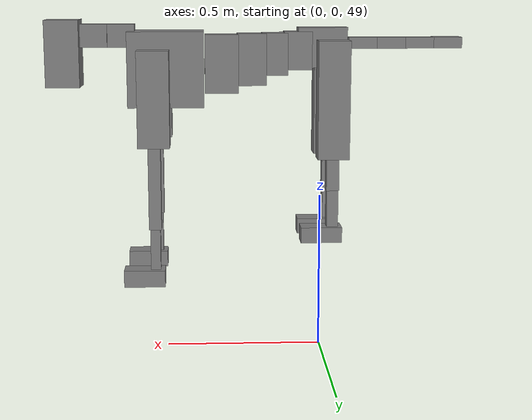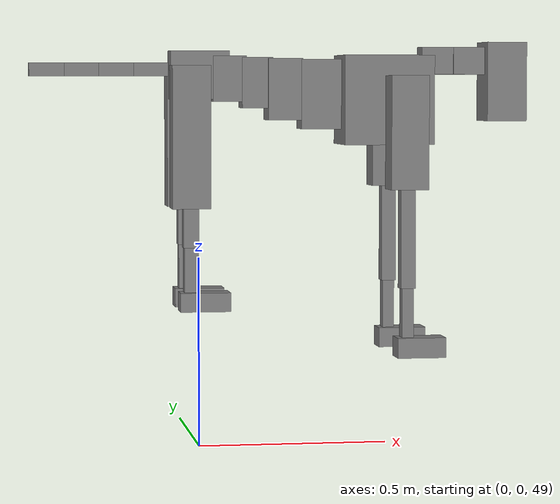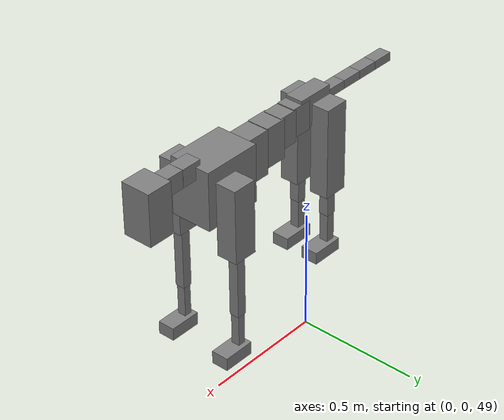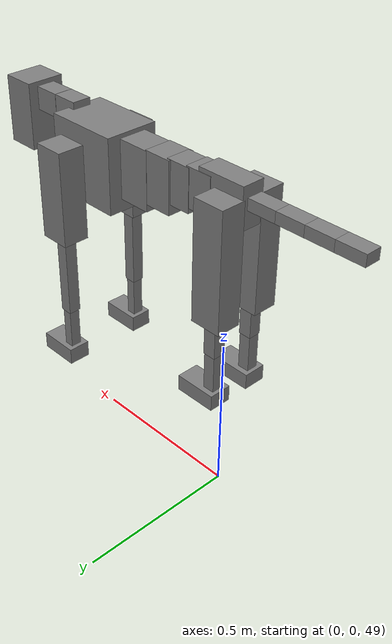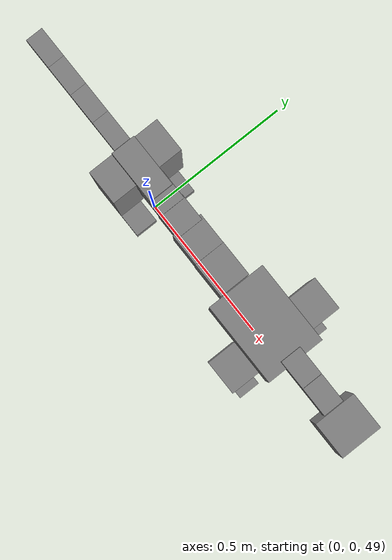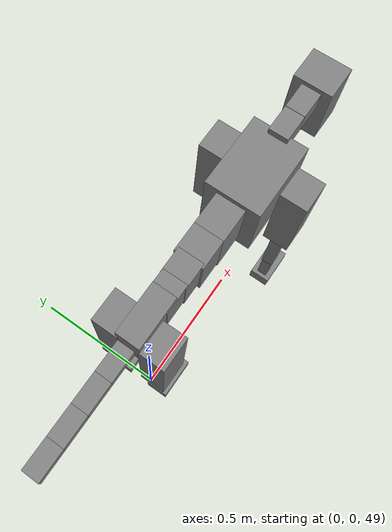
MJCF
<mujoco model="dog">

    <default>
        <joint armature="0.02" stiffness="1" damping="0.2" limited="true"/>
        <geom condim="3" friction="1 0.05 0.05" margin="0.01"/>
        <motor ctrllimited="true" ctrlrange="-1.0 1.0" forcelimited="true" gear="50"/>
    </default>

    <compiler inertiafromgeom="true" angle="radian"/>

    <option timestep="0.016" iterations="50" tolerance="1e-10" solver="Newton" jacobian="dense" cone="pyramidal"/>

    <size nconmax="20000" njmax="60000" nstack="5000000"/>
    <visual>
        <map force="0.1" zfar="30"/>
        <rgba haze="0.15 0.25 0.35 1"/>
        <quality shadowsize="2048"/>
        <global offwidth="800" offheight="800"/>
    </visual>

    <asset>
        <texture type="skybox" builtin="gradient" rgb1="0.3 0.5 0.7" rgb2="0 0 0" width="512" height="512"/>
        <texture name="texplane" type="2d" builtin="checker" rgb1=".2 .3 .4" rgb2=".1 0.15 0.2" width="512" height="512"
                 mark="cross" markrgb=".8 .8 .8"/>
        <texture name="texgeom" type="cube" builtin="flat" mark="cross" width="127" height="1278" rgb1="0.8 0.6 0.4"
                 rgb2="0.8 0.6 0.4" markrgb="1 1 1" random="0.01"/>

        <material name="matplane" reflectance="0.3" texture="texplane" texrepeat="1 1" texuniform="true"/>
        <material name="matgeom" texture="texgeom" texuniform="true" rgba="0.8 0.6 .4 1"/>
    </asset>

    <worldbody>
        <geom name="floor" pos="0 0 0" size="0 0 .25" type="plane" material="matplane" condim="3"/>

        <light directional="false" diffuse=".2 .2 .2" specular="0 0 0" pos="0 0 5" dir="0 0 -1" castshadow="false"/>
        <light mode="targetbodycom" target="torso" directional="false" diffuse=".8 .8 .8" specular="0.3 0.3 0.3"
               pos="0 0 4.0" dir="0 0 -1"/>

        <body name="root" pos="0 0 50">
            <freejoint name="root_1"/>
            <geom type="box" pos="0 0 -0.02" size="0.0774  0.0358  0.063" density="2030"/>

            <body name="spine1" pos="0.054 0 0">
                <joint name="spine1_y" axis="0 1 0" range="0 0.7" limited="true"/>
                <geom type="box" pos="0.02375 0 -0.03" size="0.04375  0.0375  0.05985" density="2030"/>

                <body name="spine2" pos="0.0612 0 0">
                    <joint name="spine2_y" axis="0 1 0" range="-0.15 0.15" limited="true"/>
                    <geom type="box" pos="0.03555  0  -0.04" size="0.04055  0.039  0.06615" density="2030"/>

                    <body name="spine3" pos="0.0730 0 0">
                        <joint name="spine3_y" axis="0 1 0" range="-0.15 0.15" limited="true"/>
                        <geom type="box" pos="0.03555  0  -0.057" size="0.04555  0.0445  0.081" density="2030"/>

                        <body name="spine4" pos="0.0780 0 0">
                            <joint name="spine4_y" axis="0 1 0" range="-0.15 0.15" limited="true"/>
                            <geom type="box" pos="0.05265  0  -0.07" size="0.05265  0.045  0.09135" density="2030"/>

                            <body name="torso" pos="0.1082 0 0">
                                <joint name="torso_y" axis="0 1 0" range="-0.15 0.15" limited="true"/>
                                <geom type="box" pos="0.11925  0  -0.085" size="0.11925  0.085  0.11745"
                                      density="2030"/>

                                <body name="neck1" pos="0.2160  0   0.0180">
                                    <joint name="neck1_y" axis="0 1 0" range="-1.2  -1" limited="true"/>
                                    <geom type="box" pos="0.0423  0  0" size="0.0423  0.03  0.036" density="2325"/>

                                    <body name="neck2" pos="0.0853  0  0">
                                        <joint name="neck2_y" axis="0 1 0" range="0.1  0" limited="true"/>
                                        <geom type="box" pos="0.0423  0  0" size="0.0423  0.03  0.036" density="2325"/>

                                        <body name="head" pos="0.0853  0  0">
                                            <joint name="head_y" axis="0 1 0" range="-0.3  -0.2" limited="true"/>
                                            <geom type="box" pos="0.0531  0  -0.055" size="0.0531  0.06  0.1044"
                                                  density="4030"/>

                                        </body>
                                    </body>
                                </body>

                                <body name="front_shoulder" pos="0.156  0   -0.0480">
                                    <joint name="front_shoulder_y" axis="0 1 0" range="-1 1.5" limited="true"/>
                                    <geom type="box" pos="0 0.13 -0.1213" size="0.0493  0.0421  0.1480" density="1158"/>
                                    <geom type="box" pos="0 -0.13 -0.1213" size="0.0493  0.0421  0.1480"
                                          density="1158"/>

                                    <body name="front_elbow" pos="0  0  -0.2426">
                                        <joint name="front_elbow_y" axis="0 1 0" range="-2 0" limited="true"/>
                                        <geom type="box" pos="0 0.13 -0.1424" size="0.0193  0.0197  0.1424"
                                              density="1081"/>
                                        <geom type="box" pos="0 -0.13 -0.1424" size="0.0193  0.0197  0.1424"
                                              density="1081"/>

                                        <body name="front_wrist" pos="0  0  -0.2847">
                                            <joint name="front_wrist_y" axis="0 1 0" range="-0.2 0" limited="true"/>
                                            <geom type="box" pos="0 0.13 -0.0716" size="0.0154  0.0172  0.0848"
                                                  density="1664"/>
                                            <geom type="box" pos="0 -0.13 -0.0716" size="0.0154  0.0172  0.0848"
                                                  density="1664"/>

                                            <body name="front_finger_end" pos="0  0  -0.1432">
                                                <joint name="front_finger_y" axis="0 1 0" range="-0.4 1"
                                                       limited="true"/>
                                                <geom type="box" pos="0.0349  0.13  -0.0113"
                                                      size="0.0640  0.0349  0.0263" density="1515"/>
                                                <geom type="box" pos="0.0349  -0.13  -0.0113"
                                                      size="0.0640  0.0349  0.0263" density="1515"/>

                                            </body>

                                        </body>
                                    </body>
                                </body>

                            </body>
                        </body>
                    </body>
                </body>
            </body>

            <body name="back_hip" pos="-0.03 0 -0.018">
                <joint name="back_hip_y" axis="0 1 0" range="-1.5 0.3" limited="true"/>
                <geom type="box" pos="0 0.07 -0.1625" size="0.0499  0.0391  0.1853" density="1154"/>
                <geom type="box" pos="0 -0.07 -0.1625" size="0.0499  0.0391  0.1853" density="1154"/>

                <body name="back_knee" pos="0  0  -0.3251">
                    <joint name="back_knee_y" axis="0 1 0" range="0 2.8" limited="true"/>
                    <geom type="box" pos="0 0.07 -0.0545" size="0.0200  0.0197  0.0701" density="1227"/>
                    <geom type="box" pos="0 -0.07 -0.0545" size="0.0200  0.0197  0.0701" density="1227"/>

                    <body name="back_ankle" pos="0  0  -0.1091">
                        <joint name="back_ankle_y" axis="0 1 0" range="-2.2 0" limited="true"/>
                        <geom type="box" pos="0 0.07 -0.0733" size="0.0182  0.0182  0.0845" density="1284"/>
                        <geom type="box" pos="0 -0.07 -0.0733" size="0.0182  0.0182  0.0845" density="1284"/>

                        <body name="back_toe_end" pos="0  0  -0.1466">
                            <joint name="back_toe_y" axis="0 1 0" range="-0.4 1" limited="true"/>
                            <geom type="box" pos="0.0356  0.07  -0.0097" size="0.0653  0.0356  0.0247" density="1515"/>
                            <geom type="box" pos="0.0356  -0.07  -0.0097" size="0.0653  0.0356  0.0247" density="1515"/>

                        </body>
                    </body>
                </body>
            </body>

            <body name="tail1" pos="-0.074 0 -0.006">
                <joint name="tail1_y" axis="0 1 0" range="-0.2 0.2" limited="true"/>
                <geom type="box" pos="-0.0536  0  0" size="0.045  0.025  0.0175" density="1587"/>

                <body name="tail2" pos="-0.09 0 0">
                    <joint name="tail2_y" axis="0 1 0" range="-0.2 0.2" limited="true"/>
                    <geom type="box" pos="-0.0536  0  0" size="0.045  0.025  0.0175" density="1587"/>

                    <body name="tail3" pos="-0.09 0 0">
                        <joint name="tail3_y" axis="0 1 0" range="-0.2 0.2" limited="true"/>
                        <geom type="box" pos="-0.0536  0  0" size="0.045  0.025  0.0175" density="1587"/>

                        <body name="tail4" pos="-0.09 0 0">
                            <joint name="tail4_y" axis="0 1 0" range="-0.2 0.2" limited="true"/>
                            <geom type="box" pos="-0.0536  0  0" size="0.045  0.025  0.0175" density="1587"/>

                        </body>
                    </body>
                </body>
            </body>
        </body>
    </worldbody>

    <actuator>
        <motor joint="spine1_y" forcerange="-150 150     "/>
        <motor joint="spine2_y" forcerange="-150 150     "/>
        <motor joint="spine3_y" forcerange="-150 150     "/>
        <motor joint="spine4_y" forcerange="-150 150     "/>
        <motor joint="torso_y" forcerange="-150 150     "/>
        <motor joint="neck1_y" forcerange="-100 100       "/>
        <motor joint="neck2_y" forcerange="-100 100       "/>
        <motor joint="head_y" forcerange="-150 150       "/>
        <motor joint="front_shoulder_y" forcerange="-189.79 190.93"/>
        <motor joint="front_elbow_y" forcerange="-125.42 117.96"/>
        <motor joint="front_wrist_y" forcerange="-62.64 74.68"/>
        <motor joint="front_finger_y" forcerange="-67.00 79.28"/>
        <motor joint="back_hip_y" forcerange="-399.40 322.48"/>
        <motor joint="back_knee_y" forcerange="-263.24 223.10"/>
        <motor joint="back_angle_y" forcerange="-61.24 130.50"/>
        <motor joint="back_toe_y" forcerange="-114.04 90.98"/>
        <motor joint="tail1_y" forcerange="-50 50     "/>
        <motor joint="tail2_y" forcerange="-50 50     "/>
        <motor joint="tail3_y" forcerange="-50 50     "/>
        <motor joint="tail4_y" forcerange="-50 50     "/>
    </actuator>
</mujoco>
